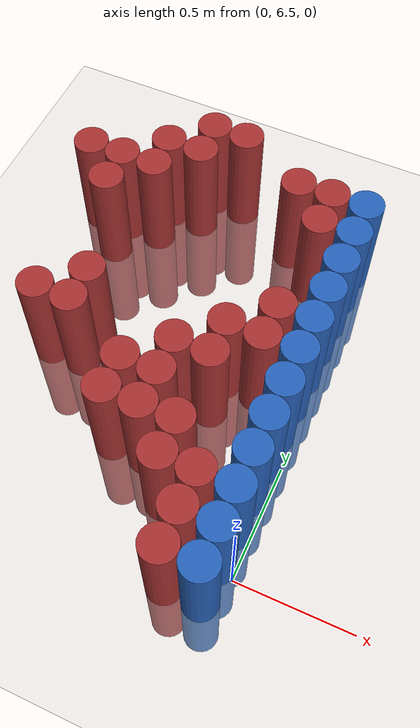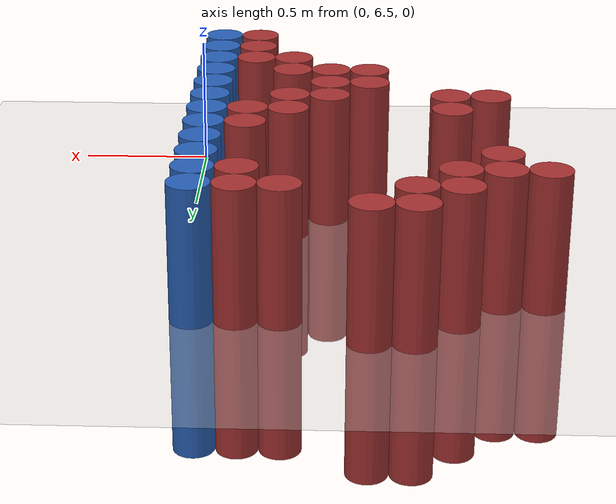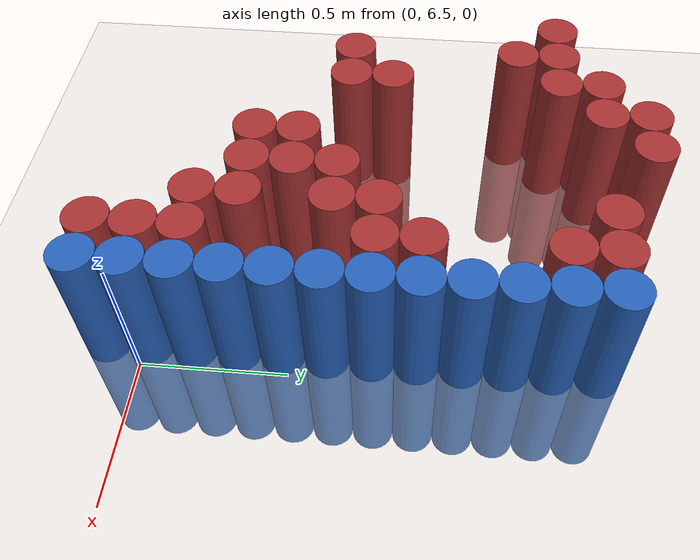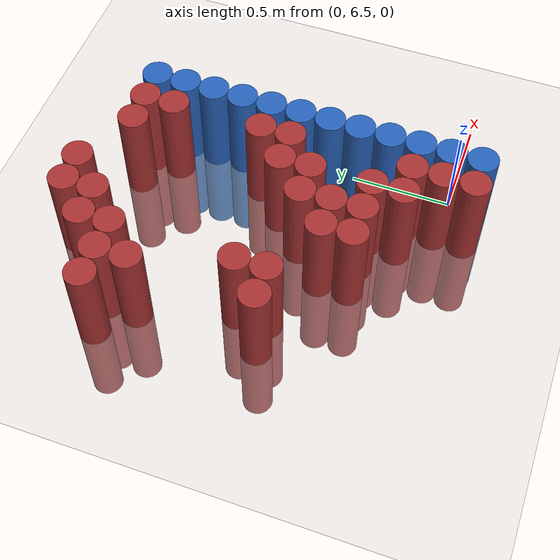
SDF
<sdf version="1.6">
 <world name="default">
  <model name="ground_plane">
   <static>1</static>
   <link name="link">
    <collision name="collision">
     <geometry><plane><normal>0 0 1</normal><size>100 100</size></plane></geometry>
     <surface><friction><ode><mu>100</mu><mu2>50</mu2></ode></friction></surface>
    </collision>
    <visual name="visual">
     <cast_shadows>0</cast_shadows>
     <geometry><plane><normal>0 0 1</normal><size>100 100</size></plane></geometry>
     <material>
      <script><uri>file://media/materials/scripts/gazebo.material</uri><name>Gazebo/Grey</name></script>
     </material>
    </visual>
   </link>
  </model>
  <model name="unit_cylinder_222">
   <static>1</static>
   <pose>-1.275000 7.875000 0.000000 0.000000 0.000000 0.000000</pose>
   <link name="link">
    <inertial>
     <mass>1</mass>
     <inertia><ixx>0.145833</ixx><ixy>0</ixy><ixz>0</ixz><iyy>0.145833</iyy><iyz>0</iyz><izz>0.125</izz></inertia>
    </inertial>
    <collision name="collision">
     <geometry><cylinder><radius>0.075000</radius><length>1</length></cylinder></geometry>
    </collision>
    <visual name="visual">
     <geometry><cylinder><radius>0.075000</radius><length>1</length></cylinder></geometry>
     <material>
      <ambient>0.648000 0.192000 0.192000 1</ambient>
      <diffuse>0.648000 0.192000 0.192000 1</diffuse>
     </material>
     <material>
      <script><name>Gazebo/Grey</name><uri>file://media/materials/scripts/gazebo.material</uri></script>
     </material>
    </visual>
    <sensor name="sensor_contact" type="contact"><contact><collision>collision</collision></contact></sensor>
   </link>
   <plugin filename="gz-sim-touchplugin-system" name="gz::sim::systems::TouchPlugin">
    <target>robot</target>
    <namespace>robot</namespace>
    <time>0.001</time>
    <enabled>true</enabled>
   </plugin>
  </model>
  <model name="unit_cylinder_228">
   <static>1</static>
   <pose>-1.125000 7.125000 0.000000 0.000000 0.000000 0.000000</pose>
   <link name="link">
    <inertial>
     <mass>1</mass>
     <inertia><ixx>0.145833</ixx><ixy>0</ixy><ixz>0</ixz><iyy>0.145833</iyy><iyz>0</iyz><izz>0.125</izz></inertia>
    </inertial>
    <collision name="collision">
     <geometry><cylinder><radius>0.075000</radius><length>1</length></cylinder></geometry>
    </collision>
    <visual name="visual">
     <geometry><cylinder><radius>0.075000</radius><length>1</length></cylinder></geometry>
     <material>
      <ambient>0.648000 0.192000 0.192000 1</ambient>
      <diffuse>0.648000 0.192000 0.192000 1</diffuse>
     </material>
     <material>
      <script><name>Gazebo/Grey</name><uri>file://media/materials/scripts/gazebo.material</uri></script>
     </material>
    </visual>
    <sensor name="sensor_contact" type="contact"><contact><collision>collision</collision></contact></sensor>
   </link>
   <plugin filename="gz-sim-touchplugin-system" name="gz::sim::systems::TouchPlugin">
    <target>robot</target>
    <namespace>robot</namespace>
    <time>0.001</time>
    <enabled>true</enabled>
   </plugin>
  </model>
  <model name="unit_cylinder_229">
   <static>1</static>
   <pose>-1.125000 7.725000 0.000000 0.000000 0.000000 0.000000</pose>
   <link name="link">
    <inertial>
     <mass>1</mass>
     <inertia><ixx>0.145833</ixx><ixy>0</ixy><ixz>0</ixz><iyy>0.145833</iyy><iyz>0</iyz><izz>0.125</izz></inertia>
    </inertial>
    <collision name="collision">
     <geometry><cylinder><radius>0.075000</radius><length>1</length></cylinder></geometry>
    </collision>
    <visual name="visual">
     <geometry><cylinder><radius>0.075000</radius><length>1</length></cylinder></geometry>
     <material>
      <ambient>0.648000 0.192000 0.192000 1</ambient>
      <diffuse>0.648000 0.192000 0.192000 1</diffuse>
     </material>
     <material>
      <script><name>Gazebo/Grey</name><uri>file://media/materials/scripts/gazebo.material</uri></script>
     </material>
    </visual>
    <sensor name="sensor_contact" type="contact"><contact><collision>collision</collision></contact></sensor>
   </link>
   <plugin filename="gz-sim-touchplugin-system" name="gz::sim::systems::TouchPlugin">
    <target>robot</target>
    <namespace>robot</namespace>
    <time>0.001</time>
    <enabled>true</enabled>
   </plugin>
  </model>
  <model name="unit_cylinder_230">
   <static>1</static>
   <pose>-1.125000 7.875000 0.000000 0.000000 0.000000 0.000000</pose>
   <link name="link">
    <inertial>
     <mass>1</mass>
     <inertia><ixx>0.145833</ixx><ixy>0</ixy><ixz>0</ixz><iyy>0.145833</iyy><iyz>0</iyz><izz>0.125</izz></inertia>
    </inertial>
    <collision name="collision">
     <geometry><cylinder><radius>0.075000</radius><length>1</length></cylinder></geometry>
    </collision>
    <visual name="visual">
     <geometry><cylinder><radius>0.075000</radius><length>1</length></cylinder></geometry>
     <material>
      <ambient>0.648000 0.192000 0.192000 1</ambient>
      <diffuse>0.648000 0.192000 0.192000 1</diffuse>
     </material>
     <material>
      <script><name>Gazebo/Grey</name><uri>file://media/materials/scripts/gazebo.material</uri></script>
     </material>
    </visual>
    <sensor name="sensor_contact" type="contact"><contact><collision>collision</collision></contact></sensor>
   </link>
   <plugin filename="gz-sim-touchplugin-system" name="gz::sim::systems::TouchPlugin">
    <target>robot</target>
    <namespace>robot</namespace>
    <time>0.001</time>
    <enabled>true</enabled>
   </plugin>
  </model>
  <model name="unit_cylinder_236">
   <static>1</static>
   <pose>-0.975000 7.125000 0.000000 0.000000 0.000000 0.000000</pose>
   <link name="link">
    <inertial>
     <mass>1</mass>
     <inertia><ixx>0.145833</ixx><ixy>0</ixy><ixz>0</ixz><iyy>0.145833</iyy><iyz>0</iyz><izz>0.125</izz></inertia>
    </inertial>
    <collision name="collision">
     <geometry><cylinder><radius>0.075000</radius><length>1</length></cylinder></geometry>
    </collision>
    <visual name="visual">
     <geometry><cylinder><radius>0.075000</radius><length>1</length></cylinder></geometry>
     <material>
      <ambient>0.648000 0.192000 0.192000 1</ambient>
      <diffuse>0.648000 0.192000 0.192000 1</diffuse>
     </material>
     <material>
      <script><name>Gazebo/Grey</name><uri>file://media/materials/scripts/gazebo.material</uri></script>
     </material>
    </visual>
    <sensor name="sensor_contact" type="contact"><contact><collision>collision</collision></contact></sensor>
   </link>
   <plugin filename="gz-sim-touchplugin-system" name="gz::sim::systems::TouchPlugin">
    <target>robot</target>
    <namespace>robot</namespace>
    <time>0.001</time>
    <enabled>true</enabled>
   </plugin>
  </model>
  <model name="unit_cylinder_237">
   <static>1</static>
   <pose>-0.975000 7.275000 0.000000 0.000000 0.000000 0.000000</pose>
   <link name="link">
    <inertial>
     <mass>1</mass>
     <inertia><ixx>0.145833</ixx><ixy>0</ixy><ixz>0</ixz><iyy>0.145833</iyy><iyz>0</iyz><izz>0.125</izz></inertia>
    </inertial>
    <collision name="collision">
     <geometry><cylinder><radius>0.075000</radius><length>1</length></cylinder></geometry>
    </collision>
    <visual name="visual">
     <geometry><cylinder><radius>0.075000</radius><length>1</length></cylinder></geometry>
     <material>
      <ambient>0.648000 0.192000 0.192000 1</ambient>
      <diffuse>0.648000 0.192000 0.192000 1</diffuse>
     </material>
     <material>
      <script><name>Gazebo/Grey</name><uri>file://media/materials/scripts/gazebo.material</uri></script>
     </material>
    </visual>
    <sensor name="sensor_contact" type="contact"><contact><collision>collision</collision></contact></sensor>
   </link>
   <plugin filename="gz-sim-touchplugin-system" name="gz::sim::systems::TouchPlugin">
    <target>robot</target>
    <namespace>robot</namespace>
    <time>0.001</time>
    <enabled>true</enabled>
   </plugin>
  </model>
  <model name="unit_cylinder_238">
   <static>1</static>
   <pose>-0.975000 7.875000 0.000000 0.000000 0.000000 0.000000</pose>
   <link name="link">
    <inertial>
     <mass>1</mass>
     <inertia><ixx>0.145833</ixx><ixy>0</ixy><ixz>0</ixz><iyy>0.145833</iyy><iyz>0</iyz><izz>0.125</izz></inertia>
    </inertial>
    <collision name="collision">
     <geometry><cylinder><radius>0.075000</radius><length>1</length></cylinder></geometry>
    </collision>
    <visual name="visual">
     <geometry><cylinder><radius>0.075000</radius><length>1</length></cylinder></geometry>
     <material>
      <ambient>0.648000 0.192000 0.192000 1</ambient>
      <diffuse>0.648000 0.192000 0.192000 1</diffuse>
     </material>
     <material>
      <script><name>Gazebo/Grey</name><uri>file://media/materials/scripts/gazebo.material</uri></script>
     </material>
    </visual>
    <sensor name="sensor_contact" type="contact"><contact><collision>collision</collision></contact></sensor>
   </link>
   <plugin filename="gz-sim-touchplugin-system" name="gz::sim::systems::TouchPlugin">
    <target>robot</target>
    <namespace>robot</namespace>
    <time>0.001</time>
    <enabled>true</enabled>
   </plugin>
  </model>
  <model name="unit_cylinder_239">
   <static>1</static>
   <pose>-0.975000 8.025000 0.000000 0.000000 0.000000 0.000000</pose>
   <link name="link">
    <inertial>
     <mass>1</mass>
     <inertia><ixx>0.145833</ixx><ixy>0</ixy><ixz>0</ixz><iyy>0.145833</iyy><iyz>0</iyz><izz>0.125</izz></inertia>
    </inertial>
    <collision name="collision">
     <geometry><cylinder><radius>0.075000</radius><length>1</length></cylinder></geometry>
    </collision>
    <visual name="visual">
     <geometry><cylinder><radius>0.075000</radius><length>1</length></cylinder></geometry>
     <material>
      <ambient>0.648000 0.192000 0.192000 1</ambient>
      <diffuse>0.648000 0.192000 0.192000 1</diffuse>
     </material>
     <material>
      <script><name>Gazebo/Grey</name><uri>file://media/materials/scripts/gazebo.material</uri></script>
     </material>
    </visual>
    <sensor name="sensor_contact" type="contact"><contact><collision>collision</collision></contact></sensor>
   </link>
   <plugin filename="gz-sim-touchplugin-system" name="gz::sim::systems::TouchPlugin">
    <target>robot</target>
    <namespace>robot</namespace>
    <time>0.001</time>
    <enabled>true</enabled>
   </plugin>
  </model>
  <model name="unit_cylinder_243">
   <static>1</static>
   <pose>-0.825000 8.025000 0.000000 0.000000 0.000000 0.000000</pose>
   <link name="link">
    <inertial>
     <mass>1</mass>
     <inertia><ixx>0.145833</ixx><ixy>0</ixy><ixz>0</ixz><iyy>0.145833</iyy><iyz>0</iyz><izz>0.125</izz></inertia>
    </inertial>
    <collision name="collision">
     <geometry><cylinder><radius>0.075000</radius><length>1</length></cylinder></geometry>
    </collision>
    <visual name="visual">
     <geometry><cylinder><radius>0.075000</radius><length>1</length></cylinder></geometry>
     <material>
      <ambient>0.648000 0.192000 0.192000 1</ambient>
      <diffuse>0.648000 0.192000 0.192000 1</diffuse>
     </material>
     <material>
      <script><name>Gazebo/Grey</name><uri>file://media/materials/scripts/gazebo.material</uri></script>
     </material>
    </visual>
    <sensor name="sensor_contact" type="contact"><contact><collision>collision</collision></contact></sensor>
   </link>
   <plugin filename="gz-sim-touchplugin-system" name="gz::sim::systems::TouchPlugin">
    <target>robot</target>
    <namespace>robot</namespace>
    <time>0.001</time>
    <enabled>true</enabled>
   </plugin>
  </model>
  <model name="unit_cylinder_244">
   <static>1</static>
   <pose>-0.825000 8.175000 0.000000 0.000000 0.000000 0.000000</pose>
   <link name="link">
    <inertial>
     <mass>1</mass>
     <inertia><ixx>0.145833</ixx><ixy>0</ixy><ixz>0</ixz><iyy>0.145833</iyy><iyz>0</iyz><izz>0.125</izz></inertia>
    </inertial>
    <collision name="collision">
     <geometry><cylinder><radius>0.075000</radius><length>1</length></cylinder></geometry>
    </collision>
    <visual name="visual">
     <geometry><cylinder><radius>0.075000</radius><length>1</length></cylinder></geometry>
     <material>
      <ambient>0.648000 0.192000 0.192000 1</ambient>
      <diffuse>0.648000 0.192000 0.192000 1</diffuse>
     </material>
     <material>
      <script><name>Gazebo/Grey</name><uri>file://media/materials/scripts/gazebo.material</uri></script>
     </material>
    </visual>
    <sensor name="sensor_contact" type="contact"><contact><collision>collision</collision></contact></sensor>
   </link>
   <plugin filename="gz-sim-touchplugin-system" name="gz::sim::systems::TouchPlugin">
    <target>robot</target>
    <namespace>robot</namespace>
    <time>0.001</time>
    <enabled>true</enabled>
   </plugin>
  </model>
  <model name="unit_cylinder_247">
   <static>1</static>
   <pose>-0.675000 6.825000 0.000000 0.000000 0.000000 0.000000</pose>
   <link name="link">
    <inertial>
     <mass>1</mass>
     <inertia><ixx>0.145833</ixx><ixy>0</ixy><ixz>0</ixz><iyy>0.145833</iyy><iyz>0</iyz><izz>0.125</izz></inertia>
    </inertial>
    <collision name="collision">
     <geometry><cylinder><radius>0.075000</radius><length>1</length></cylinder></geometry>
    </collision>
    <visual name="visual">
     <geometry><cylinder><radius>0.075000</radius><length>1</length></cylinder></geometry>
     <material>
      <ambient>0.648000 0.192000 0.192000 1</ambient>
      <diffuse>0.648000 0.192000 0.192000 1</diffuse>
     </material>
     <material>
      <script><name>Gazebo/Grey</name><uri>file://media/materials/scripts/gazebo.material</uri></script>
     </material>
    </visual>
    <sensor name="sensor_contact" type="contact"><contact><collision>collision</collision></contact></sensor>
   </link>
   <plugin filename="gz-sim-touchplugin-system" name="gz::sim::systems::TouchPlugin">
    <target>robot</target>
    <namespace>robot</namespace>
    <time>0.001</time>
    <enabled>true</enabled>
   </plugin>
  </model>
  <model name="unit_cylinder_248">
   <static>1</static>
   <pose>-0.675000 6.975000 0.000000 0.000000 0.000000 0.000000</pose>
   <link name="link">
    <inertial>
     <mass>1</mass>
     <inertia><ixx>0.145833</ixx><ixy>0</ixy><ixz>0</ixz><iyy>0.145833</iyy><iyz>0</iyz><izz>0.125</izz></inertia>
    </inertial>
    <collision name="collision">
     <geometry><cylinder><radius>0.075000</radius><length>1</length></cylinder></geometry>
    </collision>
    <visual name="visual">
     <geometry><cylinder><radius>0.075000</radius><length>1</length></cylinder></geometry>
     <material>
      <ambient>0.648000 0.192000 0.192000 1</ambient>
      <diffuse>0.648000 0.192000 0.192000 1</diffuse>
     </material>
     <material>
      <script><name>Gazebo/Grey</name><uri>file://media/materials/scripts/gazebo.material</uri></script>
     </material>
    </visual>
    <sensor name="sensor_contact" type="contact"><contact><collision>collision</collision></contact></sensor>
   </link>
   <plugin filename="gz-sim-touchplugin-system" name="gz::sim::systems::TouchPlugin">
    <target>robot</target>
    <namespace>robot</namespace>
    <time>0.001</time>
    <enabled>true</enabled>
   </plugin>
  </model>
  <model name="unit_cylinder_249">
   <static>1</static>
   <pose>-0.675000 8.175000 0.000000 0.000000 0.000000 0.000000</pose>
   <link name="link">
    <inertial>
     <mass>1</mass>
     <inertia><ixx>0.145833</ixx><ixy>0</ixy><ixz>0</ixz><iyy>0.145833</iyy><iyz>0</iyz><izz>0.125</izz></inertia>
    </inertial>
    <collision name="collision">
     <geometry><cylinder><radius>0.075000</radius><length>1</length></cylinder></geometry>
    </collision>
    <visual name="visual">
     <geometry><cylinder><radius>0.075000</radius><length>1</length></cylinder></geometry>
     <material>
      <ambient>0.648000 0.192000 0.192000 1</ambient>
      <diffuse>0.648000 0.192000 0.192000 1</diffuse>
     </material>
     <material>
      <script><name>Gazebo/Grey</name><uri>file://media/materials/scripts/gazebo.material</uri></script>
     </material>
    </visual>
    <sensor name="sensor_contact" type="contact"><contact><collision>collision</collision></contact></sensor>
   </link>
   <plugin filename="gz-sim-touchplugin-system" name="gz::sim::systems::TouchPlugin">
    <target>robot</target>
    <namespace>robot</namespace>
    <time>0.001</time>
    <enabled>true</enabled>
   </plugin>
  </model>
  <model name="unit_cylinder_254">
   <static>1</static>
   <pose>-0.525000 6.825000 0.000000 0.000000 0.000000 0.000000</pose>
   <link name="link">
    <inertial>
     <mass>1</mass>
     <inertia><ixx>0.145833</ixx><ixy>0</ixy><ixz>0</ixz><iyy>0.145833</iyy><iyz>0</iyz><izz>0.125</izz></inertia>
    </inertial>
    <collision name="collision">
     <geometry><cylinder><radius>0.075000</radius><length>1</length></cylinder></geometry>
    </collision>
    <visual name="visual">
     <geometry><cylinder><radius>0.075000</radius><length>1</length></cylinder></geometry>
     <material>
      <ambient>0.648000 0.192000 0.192000 1</ambient>
      <diffuse>0.648000 0.192000 0.192000 1</diffuse>
     </material>
     <material>
      <script><name>Gazebo/Grey</name><uri>file://media/materials/scripts/gazebo.material</uri></script>
     </material>
    </visual>
    <sensor name="sensor_contact" type="contact"><contact><collision>collision</collision></contact></sensor>
   </link>
   <plugin filename="gz-sim-touchplugin-system" name="gz::sim::systems::TouchPlugin">
    <target>robot</target>
    <namespace>robot</namespace>
    <time>0.001</time>
    <enabled>true</enabled>
   </plugin>
  </model>
  <model name="unit_cylinder_255">
   <static>1</static>
   <pose>-0.525000 6.975000 0.000000 0.000000 0.000000 0.000000</pose>
   <link name="link">
    <inertial>
     <mass>1</mass>
     <inertia><ixx>0.145833</ixx><ixy>0</ixy><ixz>0</ixz><iyy>0.145833</iyy><iyz>0</iyz><izz>0.125</izz></inertia>
    </inertial>
    <collision name="collision">
     <geometry><cylinder><radius>0.075000</radius><length>1</length></cylinder></geometry>
    </collision>
    <visual name="visual">
     <geometry><cylinder><radius>0.075000</radius><length>1</length></cylinder></geometry>
     <material>
      <ambient>0.648000 0.192000 0.192000 1</ambient>
      <diffuse>0.648000 0.192000 0.192000 1</diffuse>
     </material>
     <material>
      <script><name>Gazebo/Grey</name><uri>file://media/materials/scripts/gazebo.material</uri></script>
     </material>
    </visual>
    <sensor name="sensor_contact" type="contact"><contact><collision>collision</collision></contact></sensor>
   </link>
   <plugin filename="gz-sim-touchplugin-system" name="gz::sim::systems::TouchPlugin">
    <target>robot</target>
    <namespace>robot</namespace>
    <time>0.001</time>
    <enabled>true</enabled>
   </plugin>
  </model>
  <model name="unit_cylinder_256">
   <static>1</static>
   <pose>-0.525000 7.125000 0.000000 0.000000 0.000000 0.000000</pose>
   <link name="link">
    <inertial>
     <mass>1</mass>
     <inertia><ixx>0.145833</ixx><ixy>0</ixy><ixz>0</ixz><iyy>0.145833</iyy><iyz>0</iyz><izz>0.125</izz></inertia>
    </inertial>
    <collision name="collision">
     <geometry><cylinder><radius>0.075000</radius><length>1</length></cylinder></geometry>
    </collision>
    <visual name="visual">
     <geometry><cylinder><radius>0.075000</radius><length>1</length></cylinder></geometry>
     <material>
      <ambient>0.648000 0.192000 0.192000 1</ambient>
      <diffuse>0.648000 0.192000 0.192000 1</diffuse>
     </material>
     <material>
      <script><name>Gazebo/Grey</name><uri>file://media/materials/scripts/gazebo.material</uri></script>
     </material>
    </visual>
    <sensor name="sensor_contact" type="contact"><contact><collision>collision</collision></contact></sensor>
   </link>
   <plugin filename="gz-sim-touchplugin-system" name="gz::sim::systems::TouchPlugin">
    <target>robot</target>
    <namespace>robot</namespace>
    <time>0.001</time>
    <enabled>true</enabled>
   </plugin>
  </model>
  <model name="unit_cylinder_263">
   <static>1</static>
   <pose>-0.375000 6.675000 0.000000 0.000000 0.000000 0.000000</pose>
   <link name="link">
    <inertial>
     <mass>1</mass>
     <inertia><ixx>0.145833</ixx><ixy>0</ixy><ixz>0</ixz><iyy>0.145833</iyy><iyz>0</iyz><izz>0.125</izz></inertia>
    </inertial>
    <collision name="collision">
     <geometry><cylinder><radius>0.075000</radius><length>1</length></cylinder></geometry>
    </collision>
    <visual name="visual">
     <geometry><cylinder><radius>0.075000</radius><length>1</length></cylinder></geometry>
     <material>
      <ambient>0.648000 0.192000 0.192000 1</ambient>
      <diffuse>0.648000 0.192000 0.192000 1</diffuse>
     </material>
     <material>
      <script><name>Gazebo/Grey</name><uri>file://media/materials/scripts/gazebo.material</uri></script>
     </material>
    </visual>
    <sensor name="sensor_contact" type="contact"><contact><collision>collision</collision></contact></sensor>
   </link>
   <plugin filename="gz-sim-touchplugin-system" name="gz::sim::systems::TouchPlugin">
    <target>robot</target>
    <namespace>robot</namespace>
    <time>0.001</time>
    <enabled>true</enabled>
   </plugin>
  </model>
  <model name="unit_cylinder_264">
   <static>1</static>
   <pose>-0.375000 6.825000 0.000000 0.000000 0.000000 0.000000</pose>
   <link name="link">
    <inertial>
     <mass>1</mass>
     <inertia><ixx>0.145833</ixx><ixy>0</ixy><ixz>0</ixz><iyy>0.145833</iyy><iyz>0</iyz><izz>0.125</izz></inertia>
    </inertial>
    <collision name="collision">
     <geometry><cylinder><radius>0.075000</radius><length>1</length></cylinder></geometry>
    </collision>
    <visual name="visual">
     <geometry><cylinder><radius>0.075000</radius><length>1</length></cylinder></geometry>
     <material>
      <ambient>0.648000 0.192000 0.192000 1</ambient>
      <diffuse>0.648000 0.192000 0.192000 1</diffuse>
     </material>
     <material>
      <script><name>Gazebo/Grey</name><uri>file://media/materials/scripts/gazebo.material</uri></script>
     </material>
    </visual>
    <sensor name="sensor_contact" type="contact"><contact><collision>collision</collision></contact></sensor>
   </link>
   <plugin filename="gz-sim-touchplugin-system" name="gz::sim::systems::TouchPlugin">
    <target>robot</target>
    <namespace>robot</namespace>
    <time>0.001</time>
    <enabled>true</enabled>
   </plugin>
  </model>
  <model name="unit_cylinder_265">
   <static>1</static>
   <pose>-0.375000 7.125000 0.000000 0.000000 0.000000 0.000000</pose>
   <link name="link">
    <inertial>
     <mass>1</mass>
     <inertia><ixx>0.145833</ixx><ixy>0</ixy><ixz>0</ixz><iyy>0.145833</iyy><iyz>0</iyz><izz>0.125</izz></inertia>
    </inertial>
    <collision name="collision">
     <geometry><cylinder><radius>0.075000</radius><length>1</length></cylinder></geometry>
    </collision>
    <visual name="visual">
     <geometry><cylinder><radius>0.075000</radius><length>1</length></cylinder></geometry>
     <material>
      <ambient>0.648000 0.192000 0.192000 1</ambient>
      <diffuse>0.648000 0.192000 0.192000 1</diffuse>
     </material>
     <material>
      <script><name>Gazebo/Grey</name><uri>file://media/materials/scripts/gazebo.material</uri></script>
     </material>
    </visual>
    <sensor name="sensor_contact" type="contact"><contact><collision>collision</collision></contact></sensor>
   </link>
   <plugin filename="gz-sim-touchplugin-system" name="gz::sim::systems::TouchPlugin">
    <target>robot</target>
    <namespace>robot</namespace>
    <time>0.001</time>
    <enabled>true</enabled>
   </plugin>
  </model>
  <model name="unit_cylinder_266">
   <static>1</static>
   <pose>-0.375000 7.275000 0.000000 0.000000 0.000000 0.000000</pose>
   <link name="link">
    <inertial>
     <mass>1</mass>
     <inertia><ixx>0.145833</ixx><ixy>0</ixy><ixz>0</ixz><iyy>0.145833</iyy><iyz>0</iyz><izz>0.125</izz></inertia>
    </inertial>
    <collision name="collision">
     <geometry><cylinder><radius>0.075000</radius><length>1</length></cylinder></geometry>
    </collision>
    <visual name="visual">
     <geometry><cylinder><radius>0.075000</radius><length>1</length></cylinder></geometry>
     <material>
      <ambient>0.648000 0.192000 0.192000 1</ambient>
      <diffuse>0.648000 0.192000 0.192000 1</diffuse>
     </material>
     <material>
      <script><name>Gazebo/Grey</name><uri>file://media/materials/scripts/gazebo.material</uri></script>
     </material>
    </visual>
    <sensor name="sensor_contact" type="contact"><contact><collision>collision</collision></contact></sensor>
   </link>
   <plugin filename="gz-sim-touchplugin-system" name="gz::sim::systems::TouchPlugin">
    <target>robot</target>
    <namespace>robot</namespace>
    <time>0.001</time>
    <enabled>true</enabled>
   </plugin>
  </model>
  <model name="unit_cylinder_267">
   <static>1</static>
   <pose>-0.375000 8.025000 0.000000 0.000000 0.000000 0.000000</pose>
   <link name="link">
    <inertial>
     <mass>1</mass>
     <inertia><ixx>0.145833</ixx><ixy>0</ixy><ixz>0</ixz><iyy>0.145833</iyy><iyz>0</iyz><izz>0.125</izz></inertia>
    </inertial>
    <collision name="collision">
     <geometry><cylinder><radius>0.075000</radius><length>1</length></cylinder></geometry>
    </collision>
    <visual name="visual">
     <geometry><cylinder><radius>0.075000</radius><length>1</length></cylinder></geometry>
     <material>
      <ambient>0.648000 0.192000 0.192000 1</ambient>
      <diffuse>0.648000 0.192000 0.192000 1</diffuse>
     </material>
     <material>
      <script><name>Gazebo/Grey</name><uri>file://media/materials/scripts/gazebo.material</uri></script>
     </material>
    </visual>
    <sensor name="sensor_contact" type="contact"><contact><collision>collision</collision></contact></sensor>
   </link>
   <plugin filename="gz-sim-touchplugin-system" name="gz::sim::systems::TouchPlugin">
    <target>robot</target>
    <namespace>robot</namespace>
    <time>0.001</time>
    <enabled>true</enabled>
   </plugin>
  </model>
  <model name="unit_cylinder_275">
   <static>1</static>
   <pose>-0.225000 6.375000 0.000000 0.000000 0.000000 0.000000</pose>
   <link name="link">
    <inertial>
     <mass>1</mass>
     <inertia><ixx>0.145833</ixx><ixy>0</ixy><ixz>0</ixz><iyy>0.145833</iyy><iyz>0</iyz><izz>0.125</izz></inertia>
    </inertial>
    <collision name="collision">
     <geometry><cylinder><radius>0.075000</radius><length>1</length></cylinder></geometry>
    </collision>
    <visual name="visual">
     <geometry><cylinder><radius>0.075000</radius><length>1</length></cylinder></geometry>
     <material>
      <ambient>0.648000 0.192000 0.192000 1</ambient>
      <diffuse>0.648000 0.192000 0.192000 1</diffuse>
     </material>
     <material>
      <script><name>Gazebo/Grey</name><uri>file://media/materials/scripts/gazebo.material</uri></script>
     </material>
    </visual>
    <sensor name="sensor_contact" type="contact"><contact><collision>collision</collision></contact></sensor>
   </link>
   <plugin filename="gz-sim-touchplugin-system" name="gz::sim::systems::TouchPlugin">
    <target>robot</target>
    <namespace>robot</namespace>
    <time>0.001</time>
    <enabled>true</enabled>
   </plugin>
  </model>
  <model name="unit_cylinder_276">
   <static>1</static>
   <pose>-0.225000 6.525000 0.000000 0.000000 0.000000 0.000000</pose>
   <link name="link">
    <inertial>
     <mass>1</mass>
     <inertia><ixx>0.145833</ixx><ixy>0</ixy><ixz>0</ixz><iyy>0.145833</iyy><iyz>0</iyz><izz>0.125</izz></inertia>
    </inertial>
    <collision name="collision">
     <geometry><cylinder><radius>0.075000</radius><length>1</length></cylinder></geometry>
    </collision>
    <visual name="visual">
     <geometry><cylinder><radius>0.075000</radius><length>1</length></cylinder></geometry>
     <material>
      <ambient>0.648000 0.192000 0.192000 1</ambient>
      <diffuse>0.648000 0.192000 0.192000 1</diffuse>
     </material>
     <material>
      <script><name>Gazebo/Grey</name><uri>file://media/materials/scripts/gazebo.material</uri></script>
     </material>
    </visual>
    <sensor name="sensor_contact" type="contact"><contact><collision>collision</collision></contact></sensor>
   </link>
   <plugin filename="gz-sim-touchplugin-system" name="gz::sim::systems::TouchPlugin">
    <target>robot</target>
    <namespace>robot</namespace>
    <time>0.001</time>
    <enabled>true</enabled>
   </plugin>
  </model>
  <model name="unit_cylinder_277">
   <static>1</static>
   <pose>-0.225000 6.675000 0.000000 0.000000 0.000000 0.000000</pose>
   <link name="link">
    <inertial>
     <mass>1</mass>
     <inertia><ixx>0.145833</ixx><ixy>0</ixy><ixz>0</ixz><iyy>0.145833</iyy><iyz>0</iyz><izz>0.125</izz></inertia>
    </inertial>
    <collision name="collision">
     <geometry><cylinder><radius>0.075000</radius><length>1</length></cylinder></geometry>
    </collision>
    <visual name="visual">
     <geometry><cylinder><radius>0.075000</radius><length>1</length></cylinder></geometry>
     <material>
      <ambient>0.648000 0.192000 0.192000 1</ambient>
      <diffuse>0.648000 0.192000 0.192000 1</diffuse>
     </material>
     <material>
      <script><name>Gazebo/Grey</name><uri>file://media/materials/scripts/gazebo.material</uri></script>
     </material>
    </visual>
    <sensor name="sensor_contact" type="contact"><contact><collision>collision</collision></contact></sensor>
   </link>
   <plugin filename="gz-sim-touchplugin-system" name="gz::sim::systems::TouchPlugin">
    <target>robot</target>
    <namespace>robot</namespace>
    <time>0.001</time>
    <enabled>true</enabled>
   </plugin>
  </model>
  <model name="unit_cylinder_278">
   <static>1</static>
   <pose>-0.225000 7.275000 0.000000 0.000000 0.000000 0.000000</pose>
   <link name="link">
    <inertial>
     <mass>1</mass>
     <inertia><ixx>0.145833</ixx><ixy>0</ixy><ixz>0</ixz><iyy>0.145833</iyy><iyz>0</iyz><izz>0.125</izz></inertia>
    </inertial>
    <collision name="collision">
     <geometry><cylinder><radius>0.075000</radius><length>1</length></cylinder></geometry>
    </collision>
    <visual name="visual">
     <geometry><cylinder><radius>0.075000</radius><length>1</length></cylinder></geometry>
     <material>
      <ambient>0.648000 0.192000 0.192000 1</ambient>
      <diffuse>0.648000 0.192000 0.192000 1</diffuse>
     </material>
     <material>
      <script><name>Gazebo/Grey</name><uri>file://media/materials/scripts/gazebo.material</uri></script>
     </material>
    </visual>
    <sensor name="sensor_contact" type="contact"><contact><collision>collision</collision></contact></sensor>
   </link>
   <plugin filename="gz-sim-touchplugin-system" name="gz::sim::systems::TouchPlugin">
    <target>robot</target>
    <namespace>robot</namespace>
    <time>0.001</time>
    <enabled>true</enabled>
   </plugin>
  </model>
  <model name="unit_cylinder_279">
   <static>1</static>
   <pose>-0.225000 7.425000 0.000000 0.000000 0.000000 0.000000</pose>
   <link name="link">
    <inertial>
     <mass>1</mass>
     <inertia><ixx>0.145833</ixx><ixy>0</ixy><ixz>0</ixz><iyy>0.145833</iyy><iyz>0</iyz><izz>0.125</izz></inertia>
    </inertial>
    <collision name="collision">
     <geometry><cylinder><radius>0.075000</radius><length>1</length></cylinder></geometry>
    </collision>
    <visual name="visual">
     <geometry><cylinder><radius>0.075000</radius><length>1</length></cylinder></geometry>
     <material>
      <ambient>0.648000 0.192000 0.192000 1</ambient>
      <diffuse>0.648000 0.192000 0.192000 1</diffuse>
     </material>
     <material>
      <script><name>Gazebo/Grey</name><uri>file://media/materials/scripts/gazebo.material</uri></script>
     </material>
    </visual>
    <sensor name="sensor_contact" type="contact"><contact><collision>collision</collision></contact></sensor>
   </link>
   <plugin filename="gz-sim-touchplugin-system" name="gz::sim::systems::TouchPlugin">
    <target>robot</target>
    <namespace>robot</namespace>
    <time>0.001</time>
    <enabled>true</enabled>
   </plugin>
  </model>
  <model name="unit_cylinder_280">
   <static>1</static>
   <pose>-0.225000 7.875000 0.000000 0.000000 0.000000 0.000000</pose>
   <link name="link">
    <inertial>
     <mass>1</mass>
     <inertia><ixx>0.145833</ixx><ixy>0</ixy><ixz>0</ixz><iyy>0.145833</iyy><iyz>0</iyz><izz>0.125</izz></inertia>
    </inertial>
    <collision name="collision">
     <geometry><cylinder><radius>0.075000</radius><length>1</length></cylinder></geometry>
    </collision>
    <visual name="visual">
     <geometry><cylinder><radius>0.075000</radius><length>1</length></cylinder></geometry>
     <material>
      <ambient>0.648000 0.192000 0.192000 1</ambient>
      <diffuse>0.648000 0.192000 0.192000 1</diffuse>
     </material>
     <material>
      <script><name>Gazebo/Grey</name><uri>file://media/materials/scripts/gazebo.material</uri></script>
     </material>
    </visual>
    <sensor name="sensor_contact" type="contact"><contact><collision>collision</collision></contact></sensor>
   </link>
   <plugin filename="gz-sim-touchplugin-system" name="gz::sim::systems::TouchPlugin">
    <target>robot</target>
    <namespace>robot</namespace>
    <time>0.001</time>
    <enabled>true</enabled>
   </plugin>
  </model>
  <model name="unit_cylinder_281">
   <static>1</static>
   <pose>-0.225000 8.025000 0.000000 0.000000 0.000000 0.000000</pose>
   <link name="link">
    <inertial>
     <mass>1</mass>
     <inertia><ixx>0.145833</ixx><ixy>0</ixy><ixz>0</ixz><iyy>0.145833</iyy><iyz>0</iyz><izz>0.125</izz></inertia>
    </inertial>
    <collision name="collision">
     <geometry><cylinder><radius>0.075000</radius><length>1</length></cylinder></geometry>
    </collision>
    <visual name="visual">
     <geometry><cylinder><radius>0.075000</radius><length>1</length></cylinder></geometry>
     <material>
      <ambient>0.648000 0.192000 0.192000 1</ambient>
      <diffuse>0.648000 0.192000 0.192000 1</diffuse>
     </material>
     <material>
      <script><name>Gazebo/Grey</name><uri>file://media/materials/scripts/gazebo.material</uri></script>
     </material>
    </visual>
    <sensor name="sensor_contact" type="contact"><contact><collision>collision</collision></contact></sensor>
   </link>
   <plugin filename="gz-sim-touchplugin-system" name="gz::sim::systems::TouchPlugin">
    <target>robot</target>
    <namespace>robot</namespace>
    <time>0.001</time>
    <enabled>true</enabled>
   </plugin>
  </model>
  <model name="unit_cylinder_296">
   <static>1</static>
   <pose>-0.075000 6.375000 0.000000 0.000000 0.000000 0.000000</pose>
   <link name="link">
    <inertial>
     <mass>1</mass>
     <inertia><ixx>0.145833</ixx><ixy>0</ixy><ixz>0</ixz><iyy>0.145833</iyy><iyz>0</iyz><izz>0.125</izz></inertia>
    </inertial>
    <collision name="collision">
     <geometry><cylinder><radius>0.075000</radius><length>1</length></cylinder></geometry>
    </collision>
    <visual name="visual">
     <geometry><cylinder><radius>0.075000</radius><length>1</length></cylinder></geometry>
     <material>
      <ambient>0.152000 0.379000 0.720000 1</ambient>
      <diffuse>0.152000 0.379000 0.720000 1</diffuse>
     </material>
     <material>
      <script><name>Gazebo/Grey</name><uri>file://media/materials/scripts/gazebo.material</uri></script>
     </material>
    </visual>
    <sensor name="sensor_contact" type="contact"><contact><collision>collision</collision></contact></sensor>
   </link>
   <plugin filename="gz-sim-touchplugin-system" name="gz::sim::systems::TouchPlugin">
    <target>robot</target>
    <namespace>robot</namespace>
    <time>0.001</time>
    <enabled>true</enabled>
   </plugin>
  </model>
  <model name="unit_cylinder_297">
   <static>1</static>
   <pose>-0.075000 6.525000 0.000000 0.000000 0.000000 0.000000</pose>
   <link name="link">
    <inertial>
     <mass>1</mass>
     <inertia><ixx>0.145833</ixx><ixy>0</ixy><ixz>0</ixz><iyy>0.145833</iyy><iyz>0</iyz><izz>0.125</izz></inertia>
    </inertial>
    <collision name="collision">
     <geometry><cylinder><radius>0.075000</radius><length>1</length></cylinder></geometry>
    </collision>
    <visual name="visual">
     <geometry><cylinder><radius>0.075000</radius><length>1</length></cylinder></geometry>
     <material>
      <ambient>0.152000 0.379000 0.720000 1</ambient>
      <diffuse>0.152000 0.379000 0.720000 1</diffuse>
     </material>
     <material>
      <script><name>Gazebo/Grey</name><uri>file://media/materials/scripts/gazebo.material</uri></script>
     </material>
    </visual>
    <sensor name="sensor_contact" type="contact"><contact><collision>collision</collision></contact></sensor>
   </link>
   <plugin filename="gz-sim-touchplugin-system" name="gz::sim::systems::TouchPlugin">
    <target>robot</target>
    <namespace>robot</namespace>
    <time>0.001</time>
    <enabled>true</enabled>
   </plugin>
  </model>
  <model name="unit_cylinder_298">
   <static>1</static>
   <pose>-0.075000 6.675000 0.000000 0.000000 0.000000 0.000000</pose>
   <link name="link">
    <inertial>
     <mass>1</mass>
     <inertia><ixx>0.145833</ixx><ixy>0</ixy><ixz>0</ixz><iyy>0.145833</iyy><iyz>0</iyz><izz>0.125</izz></inertia>
    </inertial>
    <collision name="collision">
     <geometry><cylinder><radius>0.075000</radius><length>1</length></cylinder></geometry>
    </collision>
    <visual name="visual">
     <geometry><cylinder><radius>0.075000</radius><length>1</length></cylinder></geometry>
     <material>
      <ambient>0.152000 0.379000 0.720000 1</ambient>
      <diffuse>0.152000 0.379000 0.720000 1</diffuse>
     </material>
     <material>
      <script><name>Gazebo/Grey</name><uri>file://media/materials/scripts/gazebo.material</uri></script>
     </material>
    </visual>
    <sensor name="sensor_contact" type="contact"><contact><collision>collision</collision></contact></sensor>
   </link>
   <plugin filename="gz-sim-touchplugin-system" name="gz::sim::systems::TouchPlugin">
    <target>robot</target>
    <namespace>robot</namespace>
    <time>0.001</time>
    <enabled>true</enabled>
   </plugin>
  </model>
  <model name="unit_cylinder_299">
   <static>1</static>
   <pose>-0.075000 6.825000 0.000000 0.000000 0.000000 0.000000</pose>
   <link name="link">
    <inertial>
     <mass>1</mass>
     <inertia><ixx>0.145833</ixx><ixy>0</ixy><ixz>0</ixz><iyy>0.145833</iyy><iyz>0</iyz><izz>0.125</izz></inertia>
    </inertial>
    <collision name="collision">
     <geometry><cylinder><radius>0.075000</radius><length>1</length></cylinder></geometry>
    </collision>
    <visual name="visual">
     <geometry><cylinder><radius>0.075000</radius><length>1</length></cylinder></geometry>
     <material>
      <ambient>0.152000 0.379000 0.720000 1</ambient>
      <diffuse>0.152000 0.379000 0.720000 1</diffuse>
     </material>
     <material>
      <script><name>Gazebo/Grey</name><uri>file://media/materials/scripts/gazebo.material</uri></script>
     </material>
    </visual>
    <sensor name="sensor_contact" type="contact"><contact><collision>collision</collision></contact></sensor>
   </link>
   <plugin filename="gz-sim-touchplugin-system" name="gz::sim::systems::TouchPlugin">
    <target>robot</target>
    <namespace>robot</namespace>
    <time>0.001</time>
    <enabled>true</enabled>
   </plugin>
  </model>
  <model name="unit_cylinder_300">
   <static>1</static>
   <pose>-0.075000 6.975000 0.000000 0.000000 0.000000 0.000000</pose>
   <link name="link">
    <inertial>
     <mass>1</mass>
     <inertia><ixx>0.145833</ixx><ixy>0</ixy><ixz>0</ixz><iyy>0.145833</iyy><iyz>0</iyz><izz>0.125</izz></inertia>
    </inertial>
    <collision name="collision">
     <geometry><cylinder><radius>0.075000</radius><length>1</length></cylinder></geometry>
    </collision>
    <visual name="visual">
     <geometry><cylinder><radius>0.075000</radius><length>1</length></cylinder></geometry>
     <material>
      <ambient>0.152000 0.379000 0.720000 1</ambient>
      <diffuse>0.152000 0.379000 0.720000 1</diffuse>
     </material>
     <material>
      <script><name>Gazebo/Grey</name><uri>file://media/materials/scripts/gazebo.material</uri></script>
     </material>
    </visual>
    <sensor name="sensor_contact" type="contact"><contact><collision>collision</collision></contact></sensor>
   </link>
   <plugin filename="gz-sim-touchplugin-system" name="gz::sim::systems::TouchPlugin">
    <target>robot</target>
    <namespace>robot</namespace>
    <time>0.001</time>
    <enabled>true</enabled>
   </plugin>
  </model>
  <model name="unit_cylinder_301">
   <static>1</static>
   <pose>-0.075000 7.125000 0.000000 0.000000 0.000000 0.000000</pose>
   <link name="link">
    <inertial>
     <mass>1</mass>
     <inertia><ixx>0.145833</ixx><ixy>0</ixy><ixz>0</ixz><iyy>0.145833</iyy><iyz>0</iyz><izz>0.125</izz></inertia>
    </inertial>
    <collision name="collision">
     <geometry><cylinder><radius>0.075000</radius><length>1</length></cylinder></geometry>
    </collision>
    <visual name="visual">
     <geometry><cylinder><radius>0.075000</radius><length>1</length></cylinder></geometry>
     <material>
      <ambient>0.152000 0.379000 0.720000 1</ambient>
      <diffuse>0.152000 0.379000 0.720000 1</diffuse>
     </material>
     <material>
      <script><name>Gazebo/Grey</name><uri>file://media/materials/scripts/gazebo.material</uri></script>
     </material>
    </visual>
    <sensor name="sensor_contact" type="contact"><contact><collision>collision</collision></contact></sensor>
   </link>
   <plugin filename="gz-sim-touchplugin-system" name="gz::sim::systems::TouchPlugin">
    <target>robot</target>
    <namespace>robot</namespace>
    <time>0.001</time>
    <enabled>true</enabled>
   </plugin>
  </model>
  <model name="unit_cylinder_302">
   <static>1</static>
   <pose>-0.075000 7.275000 0.000000 0.000000 0.000000 0.000000</pose>
   <link name="link">
    <inertial>
     <mass>1</mass>
     <inertia><ixx>0.145833</ixx><ixy>0</ixy><ixz>0</ixz><iyy>0.145833</iyy><iyz>0</iyz><izz>0.125</izz></inertia>
    </inertial>
    <collision name="collision">
     <geometry><cylinder><radius>0.075000</radius><length>1</length></cylinder></geometry>
    </collision>
    <visual name="visual">
     <geometry><cylinder><radius>0.075000</radius><length>1</length></cylinder></geometry>
     <material>
      <ambient>0.152000 0.379000 0.720000 1</ambient>
      <diffuse>0.152000 0.379000 0.720000 1</diffuse>
     </material>
     <material>
      <script><name>Gazebo/Grey</name><uri>file://media/materials/scripts/gazebo.material</uri></script>
     </material>
    </visual>
    <sensor name="sensor_contact" type="contact"><contact><collision>collision</collision></contact></sensor>
   </link>
   <plugin filename="gz-sim-touchplugin-system" name="gz::sim::systems::TouchPlugin">
    <target>robot</target>
    <namespace>robot</namespace>
    <time>0.001</time>
    <enabled>true</enabled>
   </plugin>
  </model>
  <model name="unit_cylinder_303">
   <static>1</static>
   <pose>-0.075000 7.425000 0.000000 0.000000 0.000000 0.000000</pose>
   <link name="link">
    <inertial>
     <mass>1</mass>
     <inertia><ixx>0.145833</ixx><ixy>0</ixy><ixz>0</ixz><iyy>0.145833</iyy><iyz>0</iyz><izz>0.125</izz></inertia>
    </inertial>
    <collision name="collision">
     <geometry><cylinder><radius>0.075000</radius><length>1</length></cylinder></geometry>
    </collision>
    <visual name="visual">
     <geometry><cylinder><radius>0.075000</radius><length>1</length></cylinder></geometry>
     <material>
      <ambient>0.152000 0.379000 0.720000 1</ambient>
      <diffuse>0.152000 0.379000 0.720000 1</diffuse>
     </material>
     <material>
      <script><name>Gazebo/Grey</name><uri>file://media/materials/scripts/gazebo.material</uri></script>
     </material>
    </visual>
    <sensor name="sensor_contact" type="contact"><contact><collision>collision</collision></contact></sensor>
   </link>
   <plugin filename="gz-sim-touchplugin-system" name="gz::sim::systems::TouchPlugin">
    <target>robot</target>
    <namespace>robot</namespace>
    <time>0.001</time>
    <enabled>true</enabled>
   </plugin>
  </model>
  <model name="unit_cylinder_304">
   <static>1</static>
   <pose>-0.075000 7.575000 0.000000 0.000000 0.000000 0.000000</pose>
   <link name="link">
    <inertial>
     <mass>1</mass>
     <inertia><ixx>0.145833</ixx><ixy>0</ixy><ixz>0</ixz><iyy>0.145833</iyy><iyz>0</iyz><izz>0.125</izz></inertia>
    </inertial>
    <collision name="collision">
     <geometry><cylinder><radius>0.075000</radius><length>1</length></cylinder></geometry>
    </collision>
    <visual name="visual">
     <geometry><cylinder><radius>0.075000</radius><length>1</length></cylinder></geometry>
     <material>
      <ambient>0.152000 0.379000 0.720000 1</ambient>
      <diffuse>0.152000 0.379000 0.720000 1</diffuse>
     </material>
     <material>
      <script><name>Gazebo/Grey</name><uri>file://media/materials/scripts/gazebo.material</uri></script>
     </material>
    </visual>
    <sensor name="sensor_contact" type="contact"><contact><collision>collision</collision></contact></sensor>
   </link>
   <plugin filename="gz-sim-touchplugin-system" name="gz::sim::systems::TouchPlugin">
    <target>robot</target>
    <namespace>robot</namespace>
    <time>0.001</time>
    <enabled>true</enabled>
   </plugin>
  </model>
  <model name="unit_cylinder_305">
   <static>1</static>
   <pose>-0.075000 7.725000 0.000000 0.000000 0.000000 0.000000</pose>
   <link name="link">
    <inertial>
     <mass>1</mass>
     <inertia><ixx>0.145833</ixx><ixy>0</ixy><ixz>0</ixz><iyy>0.145833</iyy><iyz>0</iyz><izz>0.125</izz></inertia>
    </inertial>
    <collision name="collision">
     <geometry><cylinder><radius>0.075000</radius><length>1</length></cylinder></geometry>
    </collision>
    <visual name="visual">
     <geometry><cylinder><radius>0.075000</radius><length>1</length></cylinder></geometry>
     <material>
      <ambient>0.152000 0.379000 0.720000 1</ambient>
      <diffuse>0.152000 0.379000 0.720000 1</diffuse>
     </material>
     <material>
      <script><name>Gazebo/Grey</name><uri>file://media/materials/scripts/gazebo.material</uri></script>
     </material>
    </visual>
    <sensor name="sensor_contact" type="contact"><contact><collision>collision</collision></contact></sensor>
   </link>
   <plugin filename="gz-sim-touchplugin-system" name="gz::sim::systems::TouchPlugin">
    <target>robot</target>
    <namespace>robot</namespace>
    <time>0.001</time>
    <enabled>true</enabled>
   </plugin>
  </model>
  <model name="unit_cylinder_306">
   <static>1</static>
   <pose>-0.075000 7.875000 0.000000 0.000000 0.000000 0.000000</pose>
   <link name="link">
    <inertial>
     <mass>1</mass>
     <inertia><ixx>0.145833</ixx><ixy>0</ixy><ixz>0</ixz><iyy>0.145833</iyy><iyz>0</iyz><izz>0.125</izz></inertia>
    </inertial>
    <collision name="collision">
     <geometry><cylinder><radius>0.075000</radius><length>1</length></cylinder></geometry>
    </collision>
    <visual name="visual">
     <geometry><cylinder><radius>0.075000</radius><length>1</length></cylinder></geometry>
     <material>
      <ambient>0.152000 0.379000 0.720000 1</ambient>
      <diffuse>0.152000 0.379000 0.720000 1</diffuse>
     </material>
     <material>
      <script><name>Gazebo/Grey</name><uri>file://media/materials/scripts/gazebo.material</uri></script>
     </material>
    </visual>
    <sensor name="sensor_contact" type="contact"><contact><collision>collision</collision></contact></sensor>
   </link>
   <plugin filename="gz-sim-touchplugin-system" name="gz::sim::systems::TouchPlugin">
    <target>robot</target>
    <namespace>robot</namespace>
    <time>0.001</time>
    <enabled>true</enabled>
   </plugin>
  </model>
  <model name="unit_cylinder_307">
   <static>1</static>
   <pose>-0.075000 8.025000 0.000000 0.000000 0.000000 0.000000</pose>
   <link name="link">
    <inertial>
     <mass>1</mass>
     <inertia><ixx>0.145833</ixx><ixy>0</ixy><ixz>0</ixz><iyy>0.145833</iyy><iyz>0</iyz><izz>0.125</izz></inertia>
    </inertial>
    <collision name="collision">
     <geometry><cylinder><radius>0.075000</radius><length>1</length></cylinder></geometry>
    </collision>
    <visual name="visual">
     <geometry><cylinder><radius>0.075000</radius><length>1</length></cylinder></geometry>
     <material>
      <ambient>0.152000 0.379000 0.720000 1</ambient>
      <diffuse>0.152000 0.379000 0.720000 1</diffuse>
     </material>
     <material>
      <script><name>Gazebo/Grey</name><uri>file://media/materials/scripts/gazebo.material</uri></script>
     </material>
    </visual>
    <sensor name="sensor_contact" type="contact"><contact><collision>collision</collision></contact></sensor>
   </link>
   <plugin filename="gz-sim-touchplugin-system" name="gz::sim::systems::TouchPlugin">
    <target>robot</target>
    <namespace>robot</namespace>
    <time>0.001</time>
    <enabled>true</enabled>
   </plugin>
  </model>
 </world>
</sdf>
